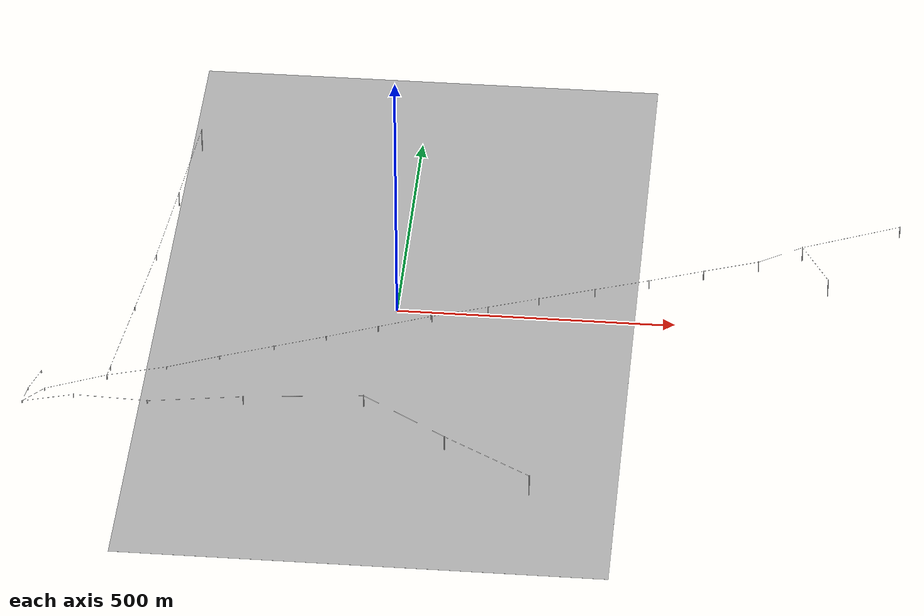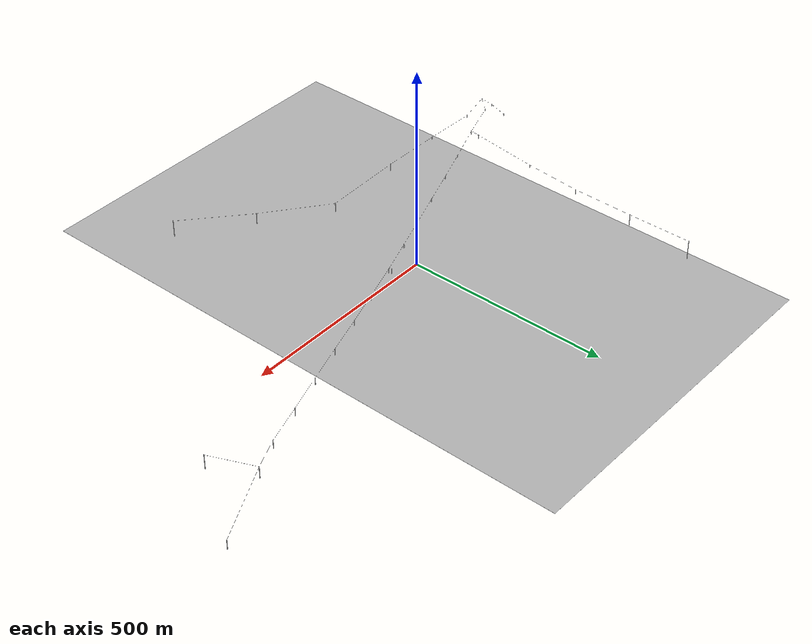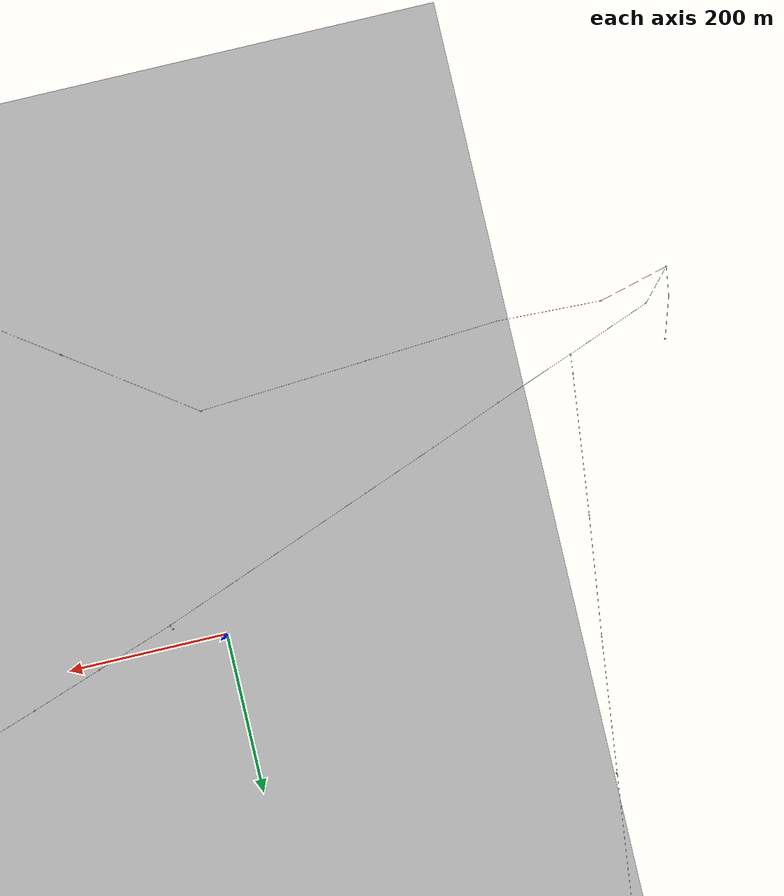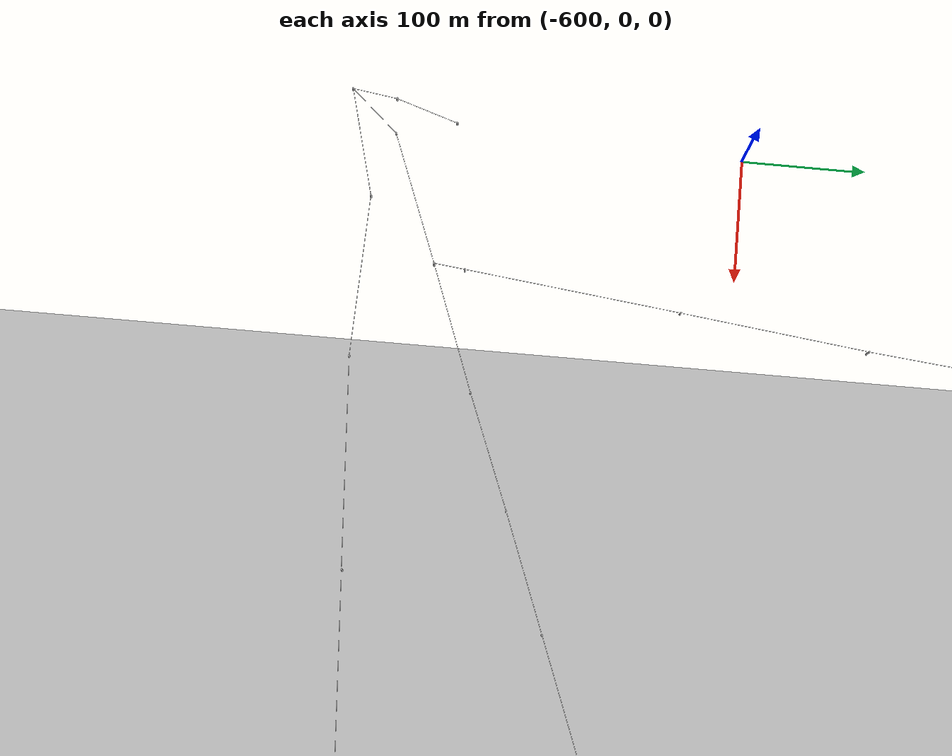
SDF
<sdf version="1.4">
 <world name="ATLAS_power_lines_world">
  <physics type="ode">
   <ode>
    <solver><type>quick</type><iters>10</iters><sor>1.3</sor></solver>
    <constraints>
     <cfm>0</cfm>
     <erp>0.2</erp>
     <contact_max_correcting_vel>100</contact_max_correcting_vel>
     <contact_surface_layer>0.001</contact_surface_layer>
    </constraints>
   </ode>
   <max_step_size>0.004</max_step_size>
   <real_time_factor>1</real_time_factor>
   <real_time_update_rate>250</real_time_update_rate>
   <gravity>0 0 -9.8</gravity>
   <magnetic_field>6e-06 2.3e-05 -4.2e-05</magnetic_field>
  </physics>
  <include><uri>model://ATLAS_ground</uri></include>
  <include><uri>model://sun</uri></include>
  <include>
   <uri>model://charging_pad_bolognini_s1</uri>
   <pose>28 61 0 0 0 1.895919</pose>
   <name>charging_pad</name>
  </include>
  <model name="Pylon_low_res_1">
   <static>1</static>
   <link name="link">
    <visual name="visual">
     <cast_shadows>false</cast_shadows>
     <geometry><cylinder><radius>0.75</radius><length>49</length></cylinder></geometry>
    </visual>
   </link>
   <pose>-409.120 449.015 24.5 0 0 0</pose>
  </model>
  <model name="Pylon_low_res_2">
   <static>1</static>
   <link name="link">
    <visual name="visual">
     <cast_shadows>false</cast_shadows>
     <geometry><cylinder><radius>0.75</radius><length>30</length></cylinder></geometry>
    </visual>
   </link>
   <pose>-430.169 276.424 15 0 0 0</pose>
  </model>
  <model name="Pylon_low_res_3">
   <static>1</static>
   <link name="link">
    <visual name="visual">
     <cast_shadows>false</cast_shadows>
     <geometry><cylinder><radius>0.75</radius><length>14</length></cylinder></geometry>
    </visual>
   </link>
   <pose>-450.540 108.275 7 0 0 0</pose>
  </model>
  <model name="Pylon_low_res_4">
   <static>1</static>
   <link name="link">
    <visual name="visual">
     <cast_shadows>false</cast_shadows>
     <geometry><cylinder><radius>0.75</radius><length>8</length></cylinder></geometry>
    </visual>
   </link>
   <pose>-470.078 -41.682 4 0 0 0</pose>
  </model>
  <model name="Pylon_low_res_5">
   <static>1</static>
   <link name="link">
    <visual name="visual">
     <cast_shadows>false</cast_shadows>
     <geometry><cylinder><radius>0.75</radius><length>10</length></cylinder></geometry>
    </visual>
   </link>
   <pose>-490.208 -215.834 5 0 0 0</pose>
  </model>
  <model name="Pylon_low_res_6">
   <static>1</static>
   <link name="link">
    <visual name="visual">
     <cast_shadows>false</cast_shadows>
     <geometry><cylinder><radius>0.75</radius><length>11</length></cylinder></geometry>
    </visual>
   </link>
   <pose>-492.875 -240.864 5.5 0 0 0</pose>
  </model>
  <model name="Pylon_low_res_7">
   <static>1</static>
   <link name="link">
    <visual name="visual">
     <cast_shadows>false</cast_shadows>
     <geometry><cylinder><radius>0.75</radius><length>6</length></cylinder></geometry>
    </visual>
   </link>
   <pose>-598.496 -281.095 3 0 0 0</pose>
  </model>
  <model name="Pylon_low_res_8">
   <static>1</static>
   <link name="link">
    <visual name="visual">
     <cast_shadows>false</cast_shadows>
     <geometry><cylinder><radius>0.75</radius><length>6</length></cylinder></geometry>
    </visual>
   </link>
   <pose>-633.009 -319.444 3 0 0 0</pose>
  </model>
  <model name="Pylon_low_res_9">
   <static>1</static>
   <link name="link">
    <visual name="visual">
     <cast_shadows>false</cast_shadows>
     <geometry><cylinder><radius>0.75</radius><length>6</length></cylinder></geometry>
    </visual>
   </link>
   <pose>-627.564 -283.028 3 0 0 0</pose>
  </model>
  <model name="Pylon_low_res_10">
   <static>1</static>
   <link name="link">
    <visual name="visual">
     <cast_shadows>false</cast_shadows>
     <geometry><cylinder><radius>0.75</radius><length>6</length></cylinder></geometry>
    </visual>
   </link>
   <pose>-611.221 -232.533 3 0 0 0</pose>
  </model>
  <model name="Pylon_low_res_11">
   <static>1</static>
   <link name="link">
    <visual name="visual">
     <cast_shadows>false</cast_shadows>
     <geometry><cylinder><radius>0.75</radius><length>8</length></cylinder></geometry>
    </visual>
   </link>
   <pose>-544.794 -296.507 4 0 0 0</pose>
  </model>
  <model name="Pylon_low_res_12">
   <static>1</static>
   <link name="link">
    <visual name="visual">
     <cast_shadows>false</cast_shadows>
     <geometry><cylinder><radius>0.75</radius><length>7</length></cylinder></geometry>
    </visual>
   </link>
   <pose>-413.182 -301.398 3.5 0 0 0</pose>
  </model>
  <model name="Pylon_low_res_13">
   <static>1</static>
   <link name="link">
    <visual name="visual">
     <cast_shadows>false</cast_shadows>
     <geometry><cylinder><radius>0.75</radius><length>19</length></cylinder></geometry>
    </visual>
   </link>
   <pose>-244.429 -290.325 9.5 0 0 0</pose>
  </model>
  <model name="Pylon_low_res_14">
   <static>1</static>
   <link name="link">
    <visual name="visual">
     <cast_shadows>false</cast_shadows>
     <geometry><cylinder><radius>0.75</radius><length>25</length></cylinder></geometry>
    </visual>
   </link>
   <pose>-32.435 -276.509 12.5 0 0 0</pose>
  </model>
  <model name="Pylon_low_res_15">
   <static>1</static>
   <link name="link">
    <visual name="visual">
     <cast_shadows>false</cast_shadows>
     <geometry><cylinder><radius>0.75</radius><length>30</length></cylinder></geometry>
    </visual>
   </link>
   <pose>119.719 -383.291 15 0 0 0</pose>
  </model>
  <model name="Pylon_low_res_16">
   <static>1</static>
   <link name="link">
    <visual name="visual">
     <cast_shadows>false</cast_shadows>
     <geometry><cylinder><radius>0.75</radius><length>44</length></cylinder></geometry>
    </visual>
   </link>
   <pose>276.420 -493.459 22 0 0 0</pose>
  </model>
  <model name="Pylon_low_res_17">
   <static>1</static>
   <link name="link">
    <visual name="visual">
     <cast_shadows>false</cast_shadows>
     <geometry><cylinder><radius>0.75</radius><length>6</length></cylinder></geometry>
    </visual>
   </link>
   <pose>-391.957 -202.912 3 0 0 0</pose>
  </model>
  <model name="Pylon_low_res_18">
   <static>1</static>
   <link name="link">
    <visual name="visual">
     <cast_shadows>false</cast_shadows>
     <geometry><cylinder><radius>0.75</radius><length>8</length></cylinder></geometry>
    </visual>
   </link>
   <pose>-301.302 -167.188 4 0 0 0</pose>
  </model>
  <model name="Pylon_low_res_19">
   <static>1</static>
   <link name="link">
    <visual name="visual">
     <cast_shadows>false</cast_shadows>
     <geometry><cylinder><radius>0.75</radius><length>9</length></cylinder></geometry>
    </visual>
   </link>
   <pose>-208.036 -131.632 4.5 0 0 0</pose>
  </model>
  <model name="Pylon_low_res_20">
   <static>1</static>
   <link name="link">
    <visual name="visual">
     <cast_shadows>false</cast_shadows>
     <geometry><cylinder><radius>0.75</radius><length>10</length></cylinder></geometry>
    </visual>
   </link>
   <pose>-118.176 -97.355 5 0 0 0</pose>
  </model>
  <model name="Pylon_low_res_21">
   <static>1</static>
   <link name="link">
    <visual name="visual">
     <cast_shadows>false</cast_shadows>
     <geometry><cylinder><radius>0.75</radius><length>12</length></cylinder></geometry>
    </visual>
   </link>
   <pose>-28.178 -63.028 6 0 0 0</pose>
  </model>
  <model name="Pylon_low_res_22">
   <static>1</static>
   <link name="link">
    <visual name="visual">
     <cast_shadows>false</cast_shadows>
     <geometry><cylinder><radius>0.75</radius><length>14</length></cylinder></geometry>
    </visual>
   </link>
   <pose>65.174 -27.481 7 0 0 0</pose>
  </model>
  <model name="Pylon_low_res_23">
   <static>1</static>
   <link name="link">
    <visual name="visual">
     <cast_shadows>false</cast_shadows>
     <geometry><cylinder><radius>0.75</radius><length>14</length></cylinder></geometry>
    </visual>
   </link>
   <pose>62.631 -21.742 7 0 0 0</pose>
  </model>
  <model name="Pylon_low_res_24">
   <static>1</static>
   <link name="link">
    <visual name="visual">
     <cast_shadows>false</cast_shadows>
     <geometry><cylinder><radius>0.75</radius><length>15</length></cylinder></geometry>
    </visual>
   </link>
   <pose>163.171 6.176 7.5 0 0 0</pose>
  </model>
  <model name="Pylon_low_res_25">
   <static>1</static>
   <link name="link">
    <visual name="visual">
     <cast_shadows>false</cast_shadows>
     <geometry><cylinder><radius>0.75</radius><length>16</length></cylinder></geometry>
    </visual>
   </link>
   <pose>252.476 37.164 8 0 0 0</pose>
  </model>
  <model name="Pylon_low_res_26">
   <static>1</static>
   <link name="link">
    <visual name="visual">
     <cast_shadows>false</cast_shadows>
     <geometry><cylinder><radius>0.75</radius><length>18</length></cylinder></geometry>
    </visual>
   </link>
   <pose>351.502 70.480 9 0 0 0</pose>
  </model>
  <model name="Pylon_low_res_27">
   <static>1</static>
   <link name="link">
    <visual name="visual">
     <cast_shadows>false</cast_shadows>
     <geometry><cylinder><radius>0.75</radius><length>19</length></cylinder></geometry>
    </visual>
   </link>
   <pose>447.289 103.004 9.5 0 0 0</pose>
  </model>
  <model name="Pylon_low_res_28">
   <static>1</static>
   <link name="link">
    <visual name="visual">
     <cast_shadows>false</cast_shadows>
     <geometry><cylinder><radius>0.75</radius><length>21</length></cylinder></geometry>
    </visual>
   </link>
   <pose>543.828 136.838 10.5 0 0 0</pose>
  </model>
  <model name="Pylon_low_res_29">
   <static>1</static>
   <link name="link">
    <visual name="visual">
     <cast_shadows>false</cast_shadows>
     <geometry><cylinder><radius>0.75</radius><length>23</length></cylinder></geometry>
    </visual>
   </link>
   <pose>641.898 170.080 11.5 0 0 0</pose>
  </model>
  <model name="Pylon_low_res_30">
   <static>1</static>
   <link name="link">
    <visual name="visual">
     <cast_shadows>false</cast_shadows>
     <geometry><cylinder><radius>0.75</radius><length>32</length></cylinder></geometry>
    </visual>
   </link>
   <pose>719.770 208.398 16 0 0 0</pose>
  </model>
  <model name="Pylon_low_res_31">
   <static>1</static>
   <link name="link">
    <visual name="visual">
     <cast_shadows>false</cast_shadows>
     <geometry><cylinder><radius>0.75</radius><length>38</length></cylinder></geometry>
    </visual>
   </link>
   <pose>769.668 108.103 19 0 0 0</pose>
  </model>
  <model name="Pylon_low_res_32">
   <static>1</static>
   <link name="link">
    <visual name="visual">
     <cast_shadows>false</cast_shadows>
     <geometry><cylinder><radius>0.75</radius><length>25</length></cylinder></geometry>
    </visual>
   </link>
   <pose>894.348 293.824 12.5 0 0 0</pose>
  </model>
  <model name="Wire_low_res_1">
   <static>1</static>
   <link name="link">
    <visual name="visual">
     <cast_shadows>false</cast_shadows>
     <geometry><cylinder><radius>0.15</radius><length>174.904</length></cylinder></geometry>
    </visual>
   </link>
   <pose>-419.644 362.7195 38.5 1.679 0 -0.121</pose>
  </model>
  <model name="Wire_low_res_2">
   <static>1</static>
   <link name="link">
    <visual name="visual">
     <cast_shadows>false</cast_shadows>
     <geometry><cylinder><radius>0.15</radius><length>170.132</length></cylinder></geometry>
    </visual>
   </link>
   <pose>-440.354 192.3495 21 1.664 0 -0.120</pose>
  </model>
  <model name="Wire_low_res_3">
   <static>1</static>
   <link name="link">
    <visual name="visual">
     <cast_shadows>false</cast_shadows>
     <geometry><cylinder><radius>0.15</radius><length>151.343</length></cylinder></geometry>
    </visual>
   </link>
   <pose>-460.309 33.2965 10 1.610 0 -0.129</pose>
  </model>
  <model name="Wire_low_res_4">
   <static>1</static>
   <link name="link">
    <visual name="visual">
     <cast_shadows>false</cast_shadows>
     <geometry><cylinder><radius>0.15</radius><length>175.322</length></cylinder></geometry>
    </visual>
   </link>
   <pose>-480.143 -128.758 8 1.559 0 -0.115</pose>
  </model>
  <model name="Wire_low_res_5">
   <static>1</static>
   <link name="link">
    <visual name="visual">
     <cast_shadows>false</cast_shadows>
     <geometry><cylinder><radius>0.15</radius><length>25.191</length></cylinder></geometry>
    </visual>
   </link>
   <pose>-491.541 -228.349 9.5 1.531 0 -0.106</pose>
  </model>
  <model name="Wire_low_res_6">
   <static>1</static>
   <link name="link">
    <visual name="visual">
     <cast_shadows>false</cast_shadows>
     <geometry><cylinder><radius>0.15</radius><length>113.134</length></cylinder></geometry>
    </visual>
   </link>
   <pose>-545.685 -260.9795 7.5 1.615 0 -1.206</pose>
  </model>
  <model name="Wire_low_res_7">
   <static>1</static>
   <link name="link">
    <visual name="visual">
     <cast_shadows>false</cast_shadows>
     <geometry><cylinder><radius>0.15</radius><length>51.592</length></cylinder></geometry>
    </visual>
   </link>
   <pose>-615.752 -300.2695 5 1.570 0 -0.732</pose>
  </model>
  <model name="Wire_low_res_8">
   <static>1</static>
   <link name="link">
    <visual name="visual">
     <cast_shadows>false</cast_shadows>
     <geometry><cylinder><radius>0.15</radius><length>36.820</length></cylinder></geometry>
    </visual>
   </link>
   <pose>-630.286 -301.236 5 1.570 0 2.993</pose>
  </model>
  <model name="Wire_low_res_9">
   <static>1</static>
   <link name="link">
    <visual name="visual">
     <cast_shadows>false</cast_shadows>
     <geometry><cylinder><radius>0.15</radius><length>53.073</length></cylinder></geometry>
    </visual>
   </link>
   <pose>-619.392 -257.7805 5 1.570 0 2.828</pose>
  </model>
  <model name="Wire_low_res_10">
   <static>1</static>
   <link name="link">
    <visual name="visual">
     <cast_shadows>false</cast_shadows>
     <geometry><cylinder><radius>0.15</radius><length>91.170</length></cylinder></geometry>
    </visual>
   </link>
   <pose>-588.901 -307.9755 6 1.548 0 1.825</pose>
  </model>
  <model name="Wire_low_res_11">
   <static>1</static>
   <link name="link">
    <visual name="visual">
     <cast_shadows>false</cast_shadows>
     <geometry><cylinder><radius>0.15</radius><length>131.706</length></cylinder></geometry>
    </visual>
   </link>
   <pose>-478.988 -298.9525 6.5 1.578 0 1.533</pose>
  </model>
  <model name="Wire_low_res_12">
   <static>1</static>
   <link name="link">
    <visual name="visual">
     <cast_shadows>false</cast_shadows>
     <geometry><cylinder><radius>0.15</radius><length>169.541</length></cylinder></geometry>
    </visual>
   </link>
   <pose>-328.805 -295.8615 12 1.499 0 1.636</pose>
  </model>
  <model name="Wire_low_res_13">
   <static>1</static>
   <link name="link">
    <visual name="visual">
     <cast_shadows>false</cast_shadows>
     <geometry><cylinder><radius>0.15</radius><length>212.528</length></cylinder></geometry>
    </visual>
   </link>
   <pose>-138.432 -283.417 21 1.542 0 1.635</pose>
  </model>
  <model name="Wire_low_res_14">
   <static>1</static>
   <link name="link">
    <visual name="visual">
     <cast_shadows>false</cast_shadows>
     <geometry><cylinder><radius>0.15</radius><length>185.952</length></cylinder></geometry>
    </visual>
   </link>
   <pose>43.642 -329.9 26.5 1.543 0 0.958</pose>
  </model>
  <model name="Wire_low_res_15">
   <static>1</static>
   <link name="link">
    <visual name="visual">
     <cast_shadows>false</cast_shadows>
     <geometry><cylinder><radius>0.15</radius><length>192.062</length></cylinder></geometry>
    </visual>
   </link>
   <pose>198.069 -438.375 36 1.497 0 0.958</pose>
  </model>
  <model name="Wire_low_res_16">
   <static>1</static>
   <link name="link">
    <visual name="visual">
     <cast_shadows>false</cast_shadows>
     <geometry><cylinder><radius>0.15</radius><length>107.934</length></cylinder></geometry>
    </visual>
   </link>
   <pose>-442.416 -221.888 7.5 1.617 0 1.930</pose>
  </model>
  <model name="Wire_low_res_17">
   <static>1</static>
   <link name="link">
    <visual name="visual">
     <cast_shadows>false</cast_shadows>
     <geometry><cylinder><radius>0.15</radius><length>97.460</length></cylinder></geometry>
    </visual>
   </link>
   <pose>-346.629 -185.05 6 1.550 0 1.946</pose>
  </model>
  <model name="Wire_low_res_18">
   <static>1</static>
   <link name="link">
    <visual name="visual">
     <cast_shadows>false</cast_shadows>
     <geometry><cylinder><radius>0.15</radius><length>99.818</length></cylinder></geometry>
    </visual>
   </link>
   <pose>-254.669 -149.41 7.5 1.560 0 1.935</pose>
  </model>
  <model name="Wire_low_res_19">
   <static>1</static>
   <link name="link">
    <visual name="visual">
     <cast_shadows>false</cast_shadows>
     <geometry><cylinder><radius>0.15</radius><length>96.180</length></cylinder></geometry>
    </visual>
   </link>
   <pose>-163.106 -114.4935 8.5 1.560 0 1.935</pose>
  </model>
  <model name="Wire_low_res_20">
   <static>1</static>
   <link name="link">
    <visual name="visual">
     <cast_shadows>false</cast_shadows>
     <geometry><cylinder><radius>0.15</radius><length>96.343</length></cylinder></geometry>
    </visual>
   </link>
   <pose>-73.177 -80.1915 10 1.550 0 1.935</pose>
  </model>
  <model name="Wire_low_res_21">
   <static>1</static>
   <link name="link">
    <visual name="visual">
     <cast_shadows>false</cast_shadows>
     <geometry><cylinder><radius>0.15</radius><length>99.910</length></cylinder></geometry>
    </visual>
   </link>
   <pose>18.498 -45.2545 12 1.550 0 1.934</pose>
  </model>
  <model name="Wire_low_res_22">
   <static>1</static>
   <link name="link">
    <visual name="visual">
     <cast_shadows>false</cast_shadows>
     <geometry><cylinder><radius>0.15</radius><length>6.277</length></cylinder></geometry>
    </visual>
   </link>
   <pose>63.902 -24.6115 13 1.570 0 3.558</pose>
  </model>
  <model name="Wire_low_res_23">
   <static>1</static>
   <link name="link">
    <visual name="visual">
     <cast_shadows>false</cast_shadows>
     <geometry><cylinder><radius>0.15</radius><length>103.620</length></cylinder></geometry>
    </visual>
   </link>
   <pose>114.172 -10.6525 13.5 1.561 0 1.901</pose>
  </model>
  <model name="Wire_low_res_24">
   <static>1</static>
   <link name="link">
    <visual name="visual">
     <cast_shadows>false</cast_shadows>
     <geometry><cylinder><radius>0.15</radius><length>94.533</length></cylinder></geometry>
    </visual>
   </link>
   <pose>207.823 21.67 14.5 1.560 0 1.904</pose>
  </model>
  <model name="Wire_low_res_25">
   <static>1</static>
   <link name="link">
    <visual name="visual">
     <cast_shadows>false</cast_shadows>
     <geometry><cylinder><radius>0.15</radius><length>104.499</length></cylinder></geometry>
    </visual>
   </link>
   <pose>301.989 53.822 16 1.551 0 1.895</pose>
  </model>
  <model name="Wire_low_res_26">
   <static>1</static>
   <link name="link">
    <visual name="visual">
     <cast_shadows>false</cast_shadows>
     <geometry><cylinder><radius>0.15</radius><length>101.163</length></cylinder></geometry>
    </visual>
   </link>
   <pose>399.395 86.742 17.5 1.560 0 1.898</pose>
  </model>
  <model name="Wire_low_res_27">
   <static>1</static>
   <link name="link">
    <visual name="visual">
     <cast_shadows>false</cast_shadows>
     <geometry><cylinder><radius>0.15</radius><length>102.315</length></cylinder></geometry>
    </visual>
   </link>
   <pose>495.558 119.921 19 1.551 0 1.907</pose>
  </model>
  <model name="Wire_low_res_28">
   <static>1</static>
   <link name="link">
    <visual name="visual">
     <cast_shadows>false</cast_shadows>
     <geometry><cylinder><radius>0.15</radius><length>103.570</length></cylinder></geometry>
    </visual>
   </link>
   <pose>592.863 153.459 21 1.551 0 1.897</pose>
  </model>
  <model name="Wire_low_res_29">
   <static>1</static>
   <link name="link">
    <visual name="visual">
     <cast_shadows>false</cast_shadows>
     <geometry><cylinder><radius>0.15</radius><length>87.254</length></cylinder></geometry>
    </visual>
   </link>
   <pose>680.834 189.239 26.5 1.467 0 2.028</pose>
  </model>
  <model name="Wire_low_res_30">
   <static>1</static>
   <link name="link">
    <visual name="visual">
     <cast_shadows>false</cast_shadows>
     <geometry><cylinder><radius>0.15</radius><length>112.182</length></cylinder></geometry>
    </visual>
   </link>
   <pose>744.719 158.2505 34 1.517 0 0.461</pose>
  </model>
  <model name="Wire_low_res_31">
   <static>1</static>
   <link name="link">
    <visual name="visual">
     <cast_shadows>false</cast_shadows>
     <geometry><cylinder><radius>0.15</radius><length>194.484</length></cylinder></geometry>
    </visual>
   </link>
   <pose>807.059 251.111 27.5 1.606 0 2.025</pose>
  </model>
 </world>
</sdf>

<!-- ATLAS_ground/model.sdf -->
<sdf version="1.5">
  <model name="ATLAS_ground">
    <static>true</static>
    <link name="floor">
      <collision name="collision">
        <geometry>
          <box>
            <size>855 1410 .1</size>
          </box>
        </geometry>
      </collision>
      <visual name="visual">
        <cast_shadows>false</cast_shadows>
        <geometry>
          <box>
            <size>855 1407 .1</size>
          </box>
        </geometry>
        <material>
          <script>
            <uri>model://ATLAS_ground/materials/scripts</uri>
            <uri>model://ATLAS_ground/materials/textures</uri>
            <name>ATLAS_ground</name>
          </script>
        </material>
      </visual>
    </link>
  </model>
</sdf>

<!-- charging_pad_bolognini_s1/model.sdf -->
<sdf version="1.5">
  <model name="charging_pad_bolognini_s1">
    <static>true</static>
    <link name="floor">
      <collision name="collision">
        <geometry>
          <mesh>
            <uri>model://charging_pad_bolognini_s1/meshes/charging_pad_bolognini_s1.dae</uri>
          </mesh>
        </geometry>
      </collision>
      <visual name="visual">
        <geometry>
          <mesh>
            <uri>model://charging_pad_bolognini_s1/meshes/charging_pad_bolognini_s1.dae</uri>
          </mesh>
        </geometry>
      </visual>
    </link>
  </model>
</sdf>
